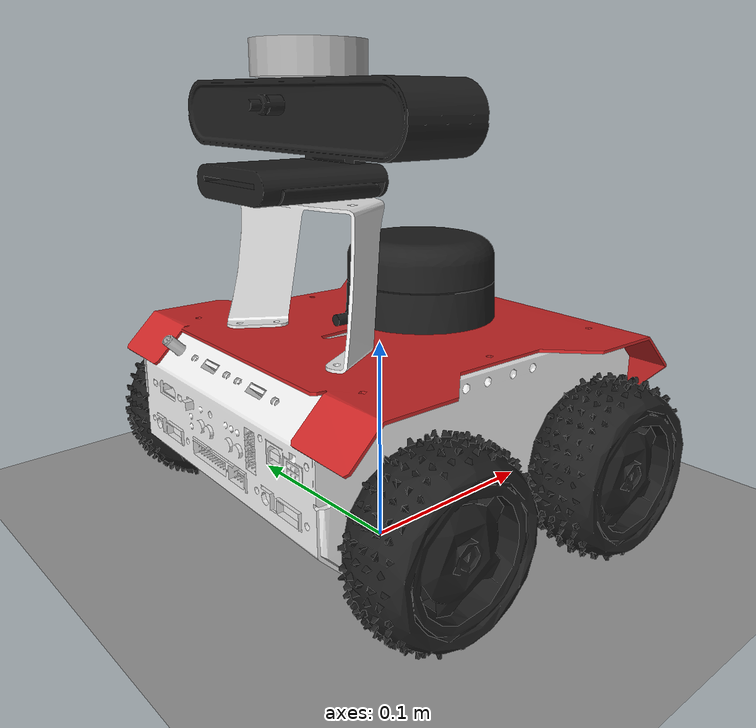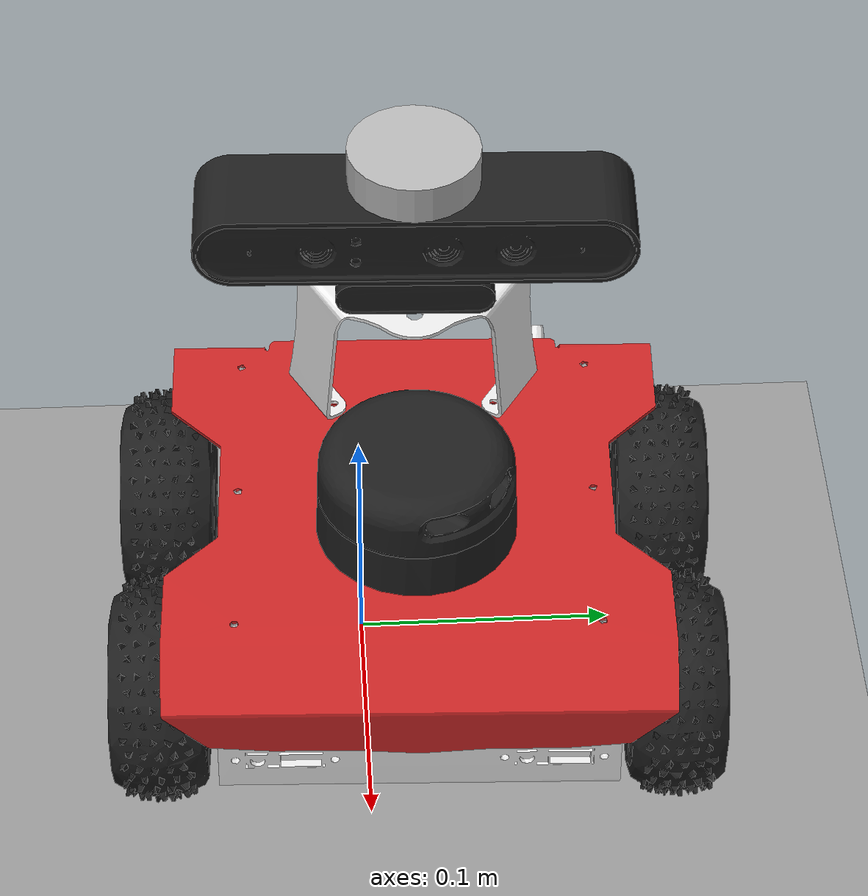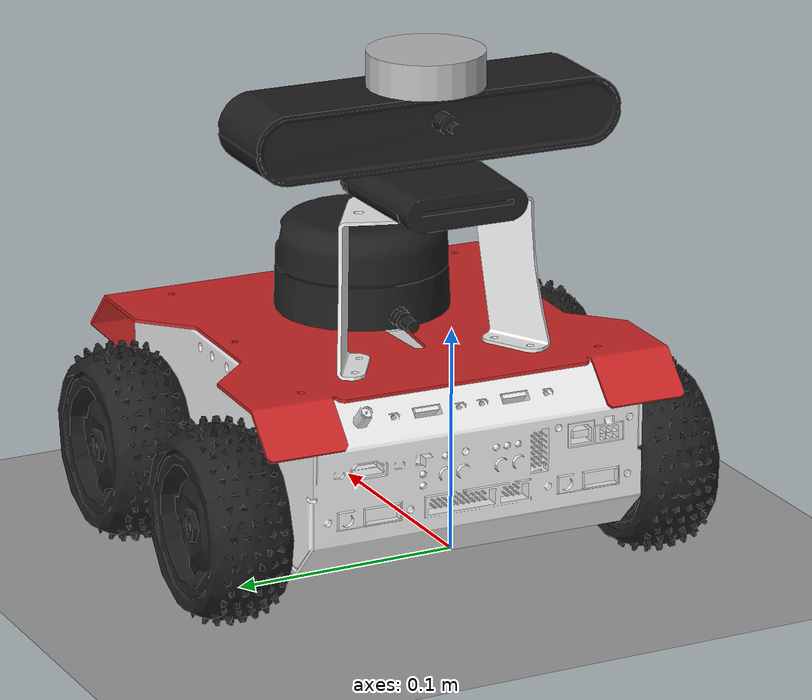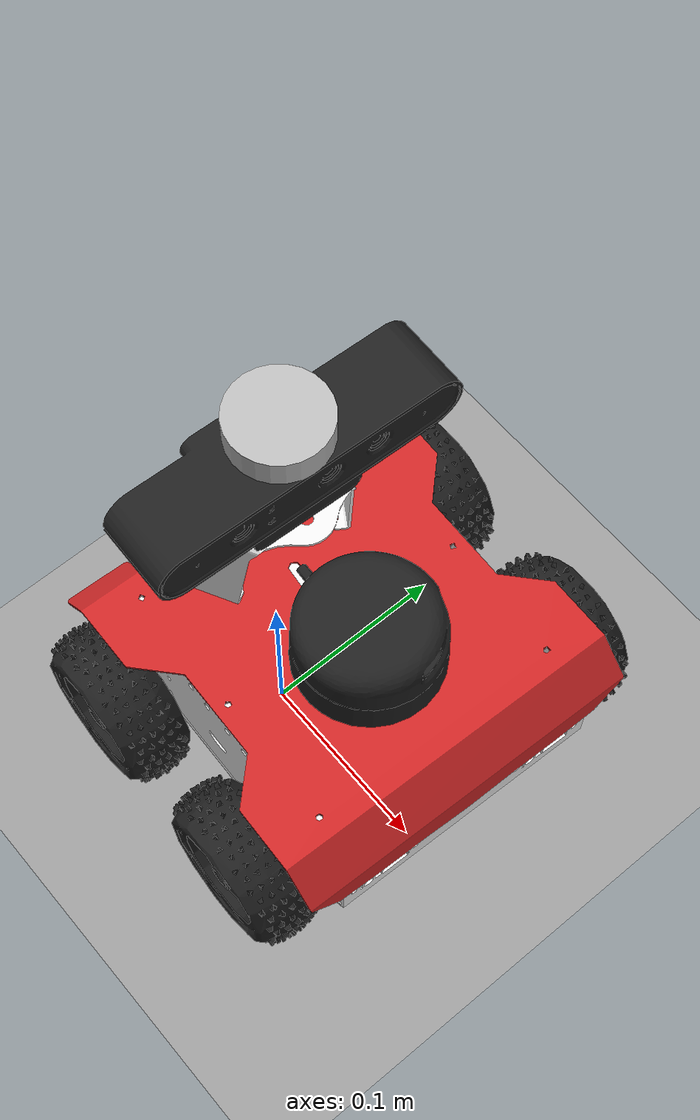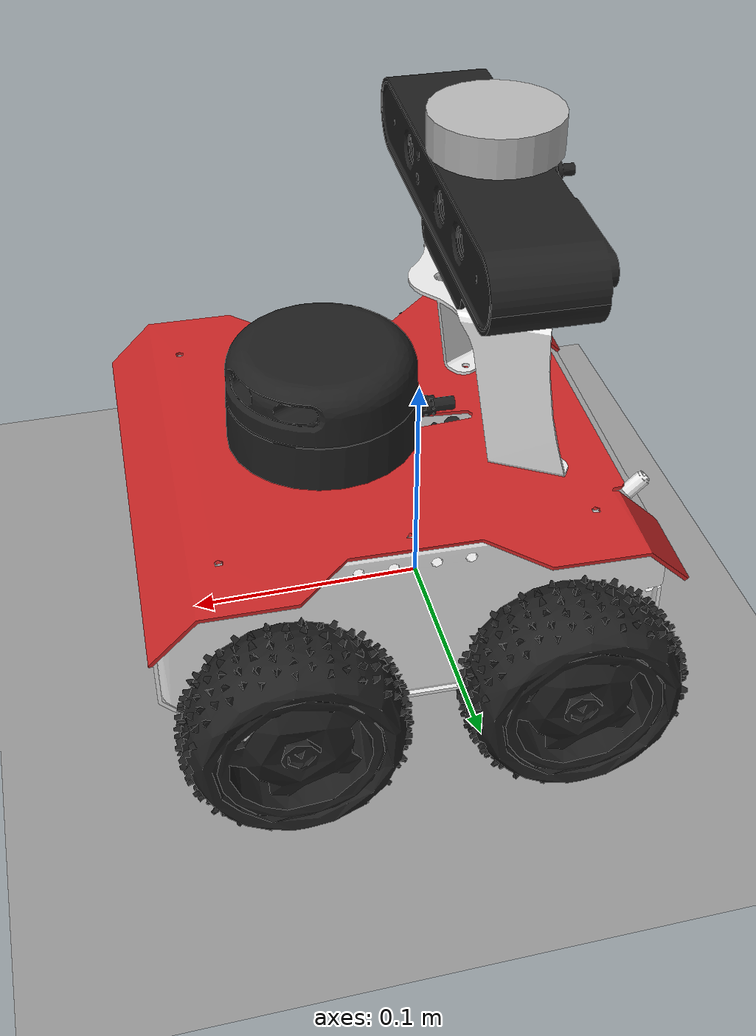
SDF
<sdf version="1.6">
 <world name="default">
  <light name="sun" type="directional">
   <pose>0 0 10 0 -0 0</pose>
   <diffuse>0.8 0.8 0.8 1</diffuse>
   <specular>0.2 0.2 0.2 1</specular>
   <attenuation>
    <range>1000</range>
    <constant>0.9</constant>
    <linear>0.01</linear>
    <quadratic>0.001</quadratic>
   </attenuation>
   <direction>0.5 0.1 -0.9</direction>
  </light>
  <scene><ambient>0.4 0.4 0.4 1</ambient><background>0.7 0.7 0.7 1</background><shadows>1</shadows></scene>
  <physics name="default_physics" default="0" type="ode">
   <max_step_size>0.01</max_step_size>
   <real_time_factor>1</real_time_factor>
   <real_time_update_rate>100</real_time_update_rate>
  </physics>
  <model name="ground_plane_0">
   <static>1</static>
   <link name="link">
    <collision name="collision">
     <geometry><plane><normal>0 0 1</normal><size>100 100</size></plane></geometry>
     <surface><friction><ode><mu>100</mu><mu2>50</mu2></ode></friction></surface>
    </collision>
    <visual name="visual">
     <cast_shadows>0</cast_shadows>
     <geometry><plane><normal>0 0 1</normal><size>100 100</size></plane></geometry>
     <material>
      <script><uri>file://media/materials/scripts/gazebo.material</uri><name>Gazebo/Grey</name></script>
     </material>
    </visual>
    <velocity_decay><linear>0</linear><angular>0</angular></velocity_decay>
   </link>
   <pose>0.497681 0 0 0 -0 0</pose>
  </model>
  <gravity>0 0 -9.8</gravity>
  <magnetic_field>6e-06 2.3e-05 -4.2e-05</magnetic_field>
  <atmosphere type="adiabatic"/>
  <audio><device>default</device></audio>
  <spherical_coordinates>
   <surface_model>EARTH_WGS84</surface_model>
   <latitude_deg>0</latitude_deg>
   <longitude_deg>0</longitude_deg>
   <elevation>0</elevation>
   <heading_deg>0</heading_deg>
  </spherical_coordinates>
  <model name="rosbot">
   <link name="base_link">
    <inertial>
     <pose>-0 0 0.040031 0 -0 0</pose>
     <mass>5.01004</mass>
     <inertia>
      <ixx>0.0100026</ixx>
      <ixy>0.01</ixy>
      <ixz>1.01383e-07</ixz>
      <iyy>0.0100027</iyy>
      <iyz>0.01</iyz>
      <izz>0.01</izz>
     </inertia>
    </inertial>
    <collision name="base_link_fixed_joint_lump__collision_collision">
     <pose>0 0 0.02 0 -0 0</pose>
     <geometry><box><size>0.2 0.15 0.04</size></box></geometry>
    </collision>
    <collision name="base_link_fixed_joint_lump__camera_link_collision_1">
     <pose>-0.01 0 0.18 0 -0 0</pose>
     <geometry><box><size>0.001 0.001 0.001</size></box></geometry>
    </collision>
    <collision name="base_link_fixed_joint_lump__gps_link_collision_2">
     <pose>-0.025 0 0.18 0 -0 0</pose>
     <geometry><box><size>0.001 0.001 0.001</size></box></geometry>
    </collision>
    <collision name="base_link_fixed_joint_lump__imu_link_collision_3">
     <pose>0 0 0.02 0 -0 0</pose>
     <geometry><box><size>0.001 0.001 0.001</size></box></geometry>
    </collision>
    <collision name="base_link_fixed_joint_lump__laser_collision_4">
     <pose>0.02 0 0.058 1.5707 0 1.56681</pose>
     <geometry>
      <mesh>
       <scale>0.001 0.001 0.001</scale>
       <uri>/home/ericvictorson/vcs/data/workspace/src/rosbot_description/src/rosbot_description/meshes/rplidar.dae</uri>
      </mesh>
     </geometry>
    </collision>
    <visual name="base_link_visual_visual">
     <pose>0 0 -0.02 1.5707 0 1.5707</pose>
     <geometry>
      <mesh>
       <scale>0.001 0.001 0.001</scale>
       <uri>/home/ericvictorson/vcs/data/workspace/src/rosbot_description/src/rosbot_description/meshes/box.dae</uri>
      </mesh>
     </geometry>
     <material>
      <script><name>Gazebo/White</name><uri>file://media/materials/scripts/gazebo.material</uri></script>
     </material>
    </visual>
    <visual name="base_link_fixed_joint_lump__camera_link_visual_1">
     <pose>-0.04 0 0.15 1.5707 0 1.5707</pose>
     <geometry>
      <mesh>
       <scale>0.001 0.001 0.001</scale>
       <uri>/home/ericvictorson/vcs/data/workspace/src/rosbot_description/src/rosbot_description/meshes/astra.dae</uri>
      </mesh>
     </geometry>
     <material>
      <script><name>Gazebo/Black</name><uri>file://media/materials/scripts/gazebo.material</uri></script>
     </material>
    </visual>
    <visual name="base_link_fixed_joint_lump__gps_link_visual_2">
     <pose>-0.045 0 0.18 0 -0 0</pose>
     <geometry><cylinder><length>0.015</length><radius>0.025</radius></cylinder></geometry>
    </visual>
    <visual name="base_link_fixed_joint_lump__laser_visual_3">
     <pose>0.02 0 0.058 1.5707 0 1.56681</pose>
     <geometry>
      <mesh>
       <scale>0.001 0.001 0.001</scale>
       <uri>/home/ericvictorson/vcs/data/workspace/src/rosbot_description/src/rosbot_description/meshes/rplidar.dae</uri>
      </mesh>
     </geometry>
     <material>
      <script><name>Gazebo/Black</name><uri>file://media/materials/scripts/gazebo.material</uri></script>
     </material>
    </visual>
    <visual name="base_link_fixed_joint_lump__top_visual_4">
     <pose>0 0 0.055 1.5707 0 1.5707</pose>
     <geometry>
      <mesh>
       <scale>0.001 0.001 0.001</scale>
       <uri>/home/ericvictorson/vcs/data/workspace/src/rosbot_description/src/rosbot_description/meshes/upper.dae</uri>
      </mesh>
     </geometry>
     <material>
      <script><name>Gazebo/Red</name><uri>file://media/materials/scripts/gazebo.material</uri></script>
     </material>
    </visual>
    <sensor name="openni_camera_camera" type="depth">
     <always_on>1</always_on>
     <visualize>1</visualize>
     <camera name="__default__">
      <horizontal_fov>1.047</horizontal_fov>
      <image><width>640</width><height>480</height><format>R8G8B8</format></image>
      <depth_camera><output>depths</output></depth_camera>
      <clip><near>0.1</near><far>100</far></clip>
     </camera>
     <plugin name="kinect_controller" filename="libgazebo_ros_openni_kinect.so">
      <alwaysOn>1</alwaysOn>
      <updateRate>10.0</updateRate>
      <cameraName>camera</cameraName>
      <frameName>camera_depth_frame</frameName>
      <imageTopicName>rgb/image_raw</imageTopicName>
      <depthImageTopicName>depth/image_raw</depthImageTopicName>
      <pointCloudTopicName>depth/points</pointCloudTopicName>
      <cameraInfoTopicName>rgb/camera_info</cameraInfoTopicName>
      <depthImageCameraInfoTopicName>depth/camera_info</depthImageCameraInfoTopicName>
      <pointCloudCutoff>0.4</pointCloudCutoff>
      <hackBaseline>0.07</hackBaseline>
      <distortionK1>0.0</distortionK1>
      <distortionK2>0.0</distortionK2>
      <distortionK3>0.0</distortionK3>
      <distortionT1>0.0</distortionT1>
      <distortionT2>0.0</distortionT2>
      <CxPrime>0.0</CxPrime>
      <Cx>0.0</Cx>
      <Cy>0.0</Cy>
      <focalLength>0.0</focalLength>
      <robotNamespace>/</robotNamespace>
     </plugin>
     <pose>-0.03 0 0.18 0 -0 0</pose>
    </sensor>
    <sensor name="range_fl" type="ray">
     <update_rate>5</update_rate>
     <ray>
      <scan>
       <horizontal>
        <samples>5</samples>
        <resolution>1</resolution>
        <min_angle>-0.05</min_angle>
        <max_angle>0.05</max_angle>
       </horizontal>
       <vertical>
        <samples>5</samples>
        <resolution>1</resolution>
        <min_angle>-0.05</min_angle>
        <max_angle>0.05</max_angle>
       </vertical>
      </scan>
      <range><min>0.01</min><max>0.9</max><resolution>0.01</resolution></range>
     </ray>
     <plugin name="gazebo_ros_range" filename="libgazebo_ros_range.so">
      <gaussianNoise>0.005</gaussianNoise>
      <alwaysOn>1</alwaysOn>
      <updateRate>5</updateRate>
      <topicName>range/fl</topicName>
      <frameName>range_fl</frameName>
      <fov>0.1</fov>
      <radiation>ultrasound</radiation>
      <robotNamespace>/</robotNamespace>
     </plugin>
     <pose>0.1 0.05 0.01 0 -0 0.13</pose>
    </sensor>
    <sensor name="range_fr" type="ray">
     <update_rate>5</update_rate>
     <ray>
      <scan>
       <horizontal>
        <samples>5</samples>
        <resolution>1</resolution>
        <min_angle>-0.05</min_angle>
        <max_angle>0.05</max_angle>
       </horizontal>
       <vertical>
        <samples>5</samples>
        <resolution>1</resolution>
        <min_angle>-0.05</min_angle>
        <max_angle>0.05</max_angle>
       </vertical>
      </scan>
      <range><min>0.01</min><max>0.9</max><resolution>0.01</resolution></range>
     </ray>
     <plugin name="gazebo_ros_range" filename="libgazebo_ros_range.so">
      <gaussianNoise>0.005</gaussianNoise>
      <alwaysOn>1</alwaysOn>
      <updateRate>5</updateRate>
      <topicName>range/fr</topicName>
      <frameName>range_fr</frameName>
      <fov>0.1</fov>
      <radiation>ultrasound</radiation>
      <robotNamespace>/</robotNamespace>
     </plugin>
     <pose>0.1 -0.05 0.01 0 0 -0.13</pose>
    </sensor>
    <sensor name="range_rl" type="ray">
     <update_rate>5</update_rate>
     <ray>
      <scan>
       <horizontal>
        <samples>5</samples>
        <resolution>1</resolution>
        <min_angle>-0.05</min_angle>
        <max_angle>0.05</max_angle>
       </horizontal>
       <vertical>
        <samples>5</samples>
        <resolution>1</resolution>
        <min_angle>-0.05</min_angle>
        <max_angle>0.05</max_angle>
       </vertical>
      </scan>
      <range><min>0.01</min><max>0.9</max><resolution>0.01</resolution></range>
     </ray>
     <plugin name="gazebo_ros_range" filename="libgazebo_ros_range.so">
      <gaussianNoise>0.005</gaussianNoise>
      <alwaysOn>1</alwaysOn>
      <updateRate>5</updateRate>
      <topicName>range/rl</topicName>
      <frameName>range_rl</frameName>
      <fov>0.1</fov>
      <radiation>ultrasound</radiation>
      <robotNamespace>/</robotNamespace>
     </plugin>
     <pose>-0.1 0.05 0.01 0 -0 3.01</pose>
    </sensor>
    <sensor name="range_rr" type="ray">
     <update_rate>5</update_rate>
     <ray>
      <scan>
       <horizontal>
        <samples>5</samples>
        <resolution>1</resolution>
        <min_angle>-0.05</min_angle>
        <max_angle>0.05</max_angle>
       </horizontal>
       <vertical>
        <samples>5</samples>
        <resolution>1</resolution>
        <min_angle>-0.05</min_angle>
        <max_angle>0.05</max_angle>
       </vertical>
      </scan>
      <range><min>0.01</min><max>0.9</max><resolution>0.01</resolution></range>
     </ray>
     <plugin name="gazebo_ros_range" filename="libgazebo_ros_range.so">
      <gaussianNoise>0.005</gaussianNoise>
      <alwaysOn>1</alwaysOn>
      <updateRate>5</updateRate>
      <topicName>range/rr</topicName>
      <frameName>range_rr</frameName>
      <fov>0.1</fov>
      <radiation>ultrasound</radiation>
      <robotNamespace>/</robotNamespace>
     </plugin>
     <pose>-0.1 -0.05 0.01 0 -0 -3.01319</pose>
    </sensor>
    <sensor name="head_rplidar_sensor" type="gpu_ray">
     <visualize>0</visualize>
     <update_rate>40</update_rate>
     <ray>
      <scan>
       <horizontal>
        <samples>720</samples>
        <resolution>1</resolution>
        <min_angle>-3.14159</min_angle>
        <max_angle>3.14159</max_angle>
       </horizontal>
      </scan>
      <range><min>0.2</min><max>12</max><resolution>0.01</resolution></range>
      <noise><type>gaussian</type><mean>0</mean><stddev>0.01</stddev></noise>
     </ray>
     <plugin name="gazebo_ros_head_rplidar_controller" filename="libgazebo_ros_gpu_laser.so">
      <topicName>scan</topicName>
      <frameName>laser</frameName>
      <robotNamespace>/</robotNamespace>
     </plugin>
     <pose>0.02 0 0 0 -0 3.14</pose>
    </sensor>
    <sensor name="imu_sensor" type="imu">
     <always_on>1</always_on>
     <update_rate>10</update_rate>
     <visualize>1</visualize>
     <topic>imu</topic>
     <plugin name="imu_plugin" filename="libgazebo_ros_imu_sensor.so">
      <topicName>imu</topicName>
      <bodyName>imu_link</bodyName>
      <updateRateHZ>10.0</updateRateHZ>
      <gaussianNoise>0.0</gaussianNoise>
      <xyzOffset>0 0 0</xyzOffset>
      <rpyOffset>0 0 0</rpyOffset>
      <frameName>imu_link</frameName>
      <robotNamespace>/</robotNamespace>
     </plugin>
    </sensor>
   </link>
   <link name="front_left_wheel">
    <pose>0.05 0.11 0 0 -0 0</pose>
    <inertial>
     <pose>0 0 0 -0 1.5707 1.5707</pose>
     <mass>0.5</mass>
     <inertia><ixx>0.001</ixx><ixy>0</ixy><ixz>0</ixz><iyy>0.001</iyy><iyz>0</iyz><izz>0.001</izz></inertia>
    </inertial>
    <collision name="front_left_wheel_fixed_joint_lump__collision_collision">
     <pose>0 0 0 0 -0 1.5707</pose>
     <geometry>
      <mesh>
       <scale>0.001 0.001 0.001</scale>
       <uri>/home/ericvictorson/vcs/data/workspace/src/rosbot_description/src/rosbot_description/meshes/wheel.dae</uri>
      </mesh>
     </geometry>
    </collision>
    <visual name="front_left_wheel_visual_visual">
     <pose>0 0 0 0 -0 1.5707</pose>
     <geometry>
      <mesh>
       <scale>0.001 0.001 0.001</scale>
       <uri>/home/ericvictorson/vcs/data/workspace/src/rosbot_description/src/rosbot_description/meshes/wheel.dae</uri>
      </mesh>
     </geometry>
     <material>
      <script><name>Gazebo/Black</name><uri>file://media/materials/scripts/gazebo.material</uri></script>
     </material>
    </visual>
   </link>
   <joint name="front_left_wheel_hinge" type="revolute">
    <child>front_left_wheel</child>
    <parent>base_link</parent>
    <axis>
     <xyz>0 1 0</xyz>
     <limit><lower>-1e+16</lower><upper>1e+16</upper></limit>
     <dynamics><spring_reference>0</spring_reference><spring_stiffness>0</spring_stiffness></dynamics>
     <use_parent_model_frame>1</use_parent_model_frame>
    </axis>
   </joint>
   <link name="front_right_wheel">
    <pose>0.05 -0.11 0 0 -0 0</pose>
    <inertial>
     <pose>0 0 0 -0 1.5707 1.5707</pose>
     <mass>0.5</mass>
     <inertia><ixx>0.001</ixx><ixy>0</ixy><ixz>0</ixz><iyy>0.001</iyy><iyz>0</iyz><izz>0.001</izz></inertia>
    </inertial>
    <collision name="front_right_wheel_fixed_joint_lump__collision_collision">
     <pose>0 0 0 0 0 -1.5707</pose>
     <geometry>
      <mesh>
       <scale>0.001 0.001 0.001</scale>
       <uri>/home/ericvictorson/vcs/data/workspace/src/rosbot_description/src/rosbot_description/meshes/wheel.dae</uri>
      </mesh>
     </geometry>
    </collision>
    <visual name="front_right_wheel_visual_visual">
     <pose>0 0 0 0 0 -1.5707</pose>
     <geometry>
      <mesh>
       <scale>0.001 0.001 0.001</scale>
       <uri>/home/ericvictorson/vcs/data/workspace/src/rosbot_description/src/rosbot_description/meshes/wheel.dae</uri>
      </mesh>
     </geometry>
     <material>
      <script><name>Gazebo/Black</name><uri>file://media/materials/scripts/gazebo.material</uri></script>
     </material>
    </visual>
   </link>
   <joint name="front_right_wheel_hinge" type="revolute">
    <child>front_right_wheel</child>
    <parent>base_link</parent>
    <axis>
     <xyz>0 1 0</xyz>
     <limit><lower>-1e+16</lower><upper>1e+16</upper></limit>
     <dynamics><spring_reference>0</spring_reference><spring_stiffness>0</spring_stiffness></dynamics>
     <use_parent_model_frame>1</use_parent_model_frame>
    </axis>
   </joint>
   <link name="rear_left_wheel">
    <pose>-0.055 0.11 0 0 -0 0</pose>
    <inertial>
     <pose>0 0 0 -0 1.5707 1.5707</pose>
     <mass>0.5</mass>
     <inertia><ixx>0.001</ixx><ixy>0</ixy><ixz>0</ixz><iyy>0.001</iyy><iyz>0</iyz><izz>0.001</izz></inertia>
    </inertial>
    <collision name="rear_left_wheel_fixed_joint_lump__collision_collision">
     <pose>0 0 0 0 -0 1.5707</pose>
     <geometry>
      <mesh>
       <scale>0.001 0.001 0.001</scale>
       <uri>/home/ericvictorson/vcs/data/workspace/src/rosbot_description/src/rosbot_description/meshes/wheel.dae</uri>
      </mesh>
     </geometry>
    </collision>
    <visual name="rear_left_wheel_visual_visual">
     <pose>0 0 0 0 -0 1.5707</pose>
     <geometry>
      <mesh>
       <scale>0.001 0.001 0.001</scale>
       <uri>/home/ericvictorson/vcs/data/workspace/src/rosbot_description/src/rosbot_description/meshes/wheel.dae</uri>
      </mesh>
     </geometry>
     <material>
      <script><name>Gazebo/Black</name><uri>file://media/materials/scripts/gazebo.material</uri></script>
     </material>
    </visual>
   </link>
   <joint name="rear_left_wheel_hinge" type="revolute">
    <child>rear_left_wheel</child>
    <parent>base_link</parent>
    <axis>
     <xyz>0 1 0</xyz>
     <limit><lower>-1e+16</lower><upper>1e+16</upper></limit>
     <dynamics><spring_reference>0</spring_reference><spring_stiffness>0</spring_stiffness></dynamics>
     <use_parent_model_frame>1</use_parent_model_frame>
    </axis>
   </joint>
   <link name="rear_right_wheel">
    <pose>-0.055 -0.11 0 0 -0 0</pose>
    <inertial>
     <pose>0 0 0 -0 1.5707 1.5707</pose>
     <mass>0.5</mass>
     <inertia><ixx>0.001</ixx><ixy>0</ixy><ixz>0</ixz><iyy>0.001</iyy><iyz>0</iyz><izz>0.001</izz></inertia>
    </inertial>
    <collision name="rear_right_wheel_fixed_joint_lump__collision_collision">
     <pose>0 0 0 0 0 -1.5707</pose>
     <geometry>
      <mesh>
       <scale>0.001 0.001 0.001</scale>
       <uri>/home/ericvictorson/vcs/data/workspace/src/rosbot_description/src/rosbot_description/meshes/wheel.dae</uri>
      </mesh>
     </geometry>
    </collision>
    <visual name="rear_right_wheel_visual_visual">
     <pose>0 0 0 0 0 -1.5707</pose>
     <geometry>
      <mesh>
       <scale>0.001 0.001 0.001</scale>
       <uri>/home/ericvictorson/vcs/data/workspace/src/rosbot_description/src/rosbot_description/meshes/wheel.dae</uri>
      </mesh>
     </geometry>
     <material>
      <script><name>Gazebo/Black</name><uri>file://media/materials/scripts/gazebo.material</uri></script>
     </material>
    </visual>
   </link>
   <joint name="rear_right_wheel_hinge" type="revolute">
    <child>rear_right_wheel</child>
    <parent>base_link</parent>
    <axis>
     <xyz>0 1 0</xyz>
     <limit><lower>-1e+16</lower><upper>1e+16</upper></limit>
     <dynamics><spring_reference>0</spring_reference><spring_stiffness>0</spring_stiffness></dynamics>
     <use_parent_model_frame>1</use_parent_model_frame>
    </axis>
   </joint>
   <plugin name="skid_steer_drive_controller" filename="libgazebo_ros_skid_steer_drive.so">
    <robotNamespace>/</robotNamespace>
    <updateRate>10.0</updateRate>
    <robotBaseFrame>/base_link</robotBaseFrame>
    <wheelSeparation>0.1</wheelSeparation>
    <wheelDiameter>0.08</wheelDiameter>
    <torque>0.5</torque>
    <leftFrontJoint>front_left_wheel_hinge</leftFrontJoint>
    <rightFrontJoint>front_right_wheel_hinge</rightFrontJoint>
    <leftRearJoint>rear_left_wheel_hinge</leftRearJoint>
    <rightRearJoint>rear_right_wheel_hinge</rightRearJoint>
    <topicName>cmd_vel</topicName>
    <commandTopic>cmd_vel</commandTopic>
    <broadcastTF>1</broadcastTF>
    <odometryTopic>odom</odometryTopic>
    <odometryFrame>/odom</odometryFrame>
    <covariance_x>0.000100</covariance_x>
    <covariance_y>0.000100</covariance_y>
    <covariance_yaw>0.010000</covariance_yaw>
   </plugin>
   <plugin name="gazebo_ros_control" filename="libgazebo_ros_control.so">
    <legacyModeNS>1</legacyModeNS>
    <robotNamespace>/</robotNamespace>
   </plugin>
   <static>0</static>
   <plugin name="gps_ublox_sim" filename="libhector_gazebo_ros_gps.so">
    <alwaysOn>1</alwaysOn>
    <updateRate>1.0</updateRate>
    <frameId>gps_link</frameId>
    <topicName>gps/fix</topicName>
    <velocityTopicName>gps/fix_velocity</velocityTopicName>
    <referenceLatitude>47.625750</referenceLatitude>
    <referenceLongitude>-122.156000</referenceLongitude>
    <drift>0 0 0</drift>
    <gaussianNoise>0 0 0</gaussianNoise>
    <velocityDrift>0 0 0</velocityDrift>
    <velocityGaussianNoise>0 0 0</velocityGaussianNoise>
    <robotNamespace>/</robotNamespace>
    <bodyName>base_link</bodyName>
    <frameName>base_link</frameName>
    <xyzOffset>0.09 0 -0.36</xyzOffset>
    <rpyOffset>0 -0 0</rpyOffset>
   </plugin>
   <pose>0.024652 0.02084 0.043245 -0.000438 0.0052 -0.034764</pose>
  </model>
 </world>
</sdf>
